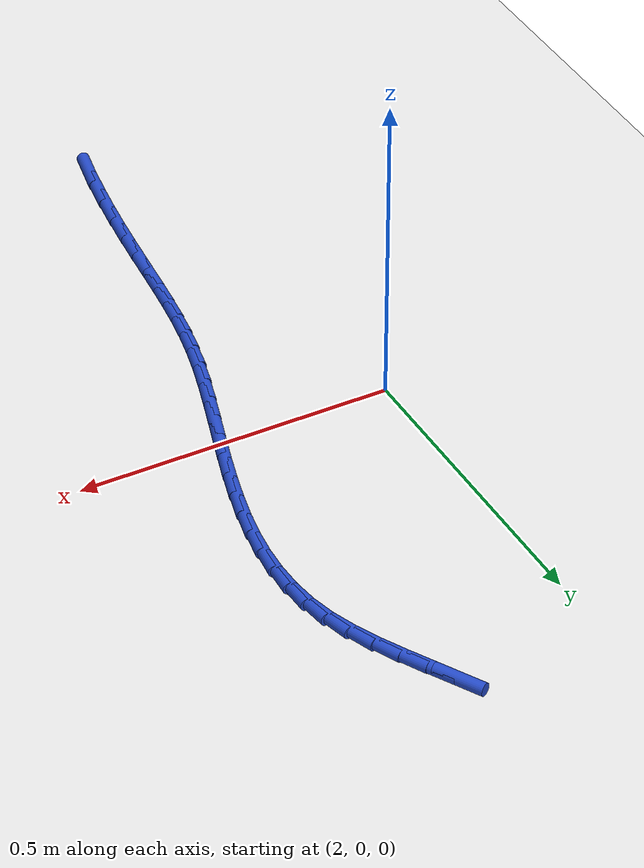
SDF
<sdf version="1.6">
 <world name="default">
  <model name="ground_plane">
   <static>1</static>
   <link name="link">
    <collision name="collision">
     <geometry><plane><normal>0 0 1</normal><size>100 100</size></plane></geometry>
     <surface><friction><ode><mu>100</mu><mu2>50</mu2></ode></friction></surface>
    </collision>
    <visual name="visual">
     <cast_shadows>0</cast_shadows>
     <geometry><plane><normal>0 0 1</normal><size>100 100</size></plane></geometry>
     <material>
      <script><uri>file://media/materials/scripts/gazebo.material</uri><name>Gazebo/WhiteGlow</name></script>
     </material>
    </visual>
   </link>
  </model>
  <model name="line">
   <link name="link_77">
    <pose>2.2261663400047205 0.6138834128634045 0.01 0 1.57 -1.057382048069833</pose>
    <collision name="collision">
     <geometry><cylinder><radius>0.01</radius><length>0.08</length></cylinder></geometry>
    </collision>
    <visual name="visual">
     <material>
      <script><name>Gazebo/Blue</name><uri>file://media/materials/scripts/gazebo.material</uri></script>
     </material>
     <geometry><cylinder><radius>0.01</radius><length>0.08</length></cylinder></geometry>
    </visual>
   </link>
   <link name="link_78">
    <pose>2.247596256149327 0.5758769898459094 0.01 0 1.57 -1.058031364144777</pose>
    <collision name="collision">
     <geometry><cylinder><radius>0.01</radius><length>0.08</length></cylinder></geometry>
    </collision>
    <visual name="visual">
     <material>
      <script><name>Gazebo/Blue</name><uri>file://media/materials/scripts/gazebo.material</uri></script>
     </material>
     <geometry><cylinder><radius>0.01</radius><length>0.08</length></cylinder></geometry>
    </visual>
   </link>
   <link name="link_79">
    <pose>2.268994310008976 0.5378694125548293 0.01 0 1.57 -1.0834048588103051</pose>
    <collision name="collision">
     <geometry><cylinder><radius>0.01</radius><length>0.08</length></cylinder></geometry>
    </collision>
    <visual name="visual">
     <material>
      <script><name>Gazebo/Blue</name><uri>file://media/materials/scripts/gazebo.material</uri></script>
     </material>
     <geometry><cylinder><radius>0.01</radius><length>0.08</length></cylinder></geometry>
    </visual>
   </link>
   <link name="link_80">
    <pose>2.2892413380935097 0.499670509051282 0.01 0 1.57 -1.1347647128070406</pose>
    <collision name="collision">
     <geometry><cylinder><radius>0.01</radius><length>0.08</length></cylinder></geometry>
    </collision>
    <visual name="visual">
     <material>
      <script><name>Gazebo/Blue</name><uri>file://media/materials/scripts/gazebo.material</uri></script>
     </material>
     <geometry><cylinder><radius>0.01</radius><length>0.08</length></cylinder></geometry>
    </visual>
   </link>
   <link name="link_81">
    <pose>2.307217606509439 0.4610899928926922 0.01 0 1.57 -1.2141855898034553</pose>
    <collision name="collision">
     <geometry><cylinder><radius>0.01</radius><length>0.08</length></cylinder></geometry>
    </collision>
    <visual name="visual">
     <material>
      <script><name>Gazebo/Blue</name><uri>file://media/materials/scripts/gazebo.material</uri></script>
     </material>
     <geometry><cylinder><radius>0.01</radius><length>0.08</length></cylinder></geometry>
    </visual>
   </link>
   <link name="link_82">
    <pose>2.3218033813632735 0.4219375776364853 0.01 0 1.57 -1.3214065197463125</pose>
    <collision name="collision">
     <geometry><cylinder><radius>0.01</radius><length>0.08</length></cylinder></geometry>
    </collision>
    <visual name="visual">
     <material>
      <script><name>Gazebo/Blue</name><uri>file://media/materials/scripts/gazebo.material</uri></script>
     </material>
     <geometry><cylinder><radius>0.01</radius><length>0.08</length></cylinder></geometry>
    </visual>
   </link>
   <link name="link_83">
    <pose>2.3319652568566966 0.38203890123069356 0.01 0 1.57 -1.4330289292118932</pose>
    <collision name="collision">
     <geometry><cylinder><radius>0.01</radius><length>0.08</length></cylinder></geometry>
    </collision>
    <visual name="visual">
     <material>
      <script><name>Gazebo/Blue</name><uri>file://media/materials/scripts/gazebo.material</uri></script>
     </material>
     <geometry><cylinder><radius>0.01</radius><length>0.08</length></cylinder></geometry>
    </visual>
   </link>
   <link name="link_84">
    <pose>2.3376008645544153 0.3413913441204843 0.01 0 1.57 -1.5326762523684545</pose>
    <collision name="collision">
     <geometry><cylinder><radius>0.01</radius><length>0.08</length></cylinder></geometry>
    </collision>
    <visual name="visual">
     <material>
      <script><name>Gazebo/Blue</name><uri>file://media/materials/scripts/gazebo.material</uri></script>
     </material>
     <geometry><cylinder><radius>0.01</radius><length>0.08</length></cylinder></geometry>
    </visual>
   </link>
   <link name="link_85">
    <pose>2.3391757690565704 0.30009704971928636 0.01 0 1.57 1.522739150454099</pose>
    <collision name="collision">
     <geometry><cylinder><radius>0.01</radius><length>0.08</length></cylinder></geometry>
    </collision>
    <visual name="visual">
     <material>
      <script><name>Gazebo/Blue</name><uri>file://media/materials/scripts/gazebo.material</uri></script>
     </material>
     <geometry><cylinder><radius>0.01</radius><length>0.08</length></cylinder></geometry>
    </visual>
   </link>
   <link name="link_86">
    <pose>2.3371636327671617 0.2582596551905236 0.01 0 1.57 1.4501482491781754</pose>
    <collision name="collision">
     <geometry><cylinder><radius>0.01</radius><length>0.08</length></cylinder></geometry>
    </collision>
    <visual name="visual">
     <material>
      <script><name>Gazebo/Blue</name><uri>file://media/materials/scripts/gazebo.material</uri></script>
     </material>
     <geometry><cylinder><radius>0.01</radius><length>0.08</length></cylinder></geometry>
    </visual>
   </link>
   <link name="link_87">
    <pose>2.332038118090189 0.21598279769761836 0.01 0 1.57 1.3905460015177409</pose>
    <collision name="collision">
     <geometry><cylinder><radius>0.01</radius><length>0.08</length></cylinder></geometry>
    </collision>
    <visual name="visual">
     <material>
      <script><name>Gazebo/Blue</name><uri>file://media/materials/scripts/gazebo.material</uri></script>
     </material>
     <geometry><cylinder><radius>0.01</radius><length>0.08</length></cylinder></geometry>
    </visual>
   </link>
   <link name="link_88">
    <pose>2.3242728874296534 0.17337011440399439 0.01 0 1.57 1.3430225275003047</pose>
    <collision name="collision">
     <geometry><cylinder><radius>0.01</radius><length>0.08</length></cylinder></geometry>
    </collision>
    <visual name="visual">
     <material>
      <script><name>Gazebo/Blue</name><uri>file://media/materials/scripts/gazebo.material</uri></script>
     </material>
     <geometry><cylinder><radius>0.01</radius><length>0.08</length></cylinder></geometry>
    </visual>
   </link>
   <link name="link_89">
    <pose>2.314341603189553 0.1305252424730749 0.01 0 1.57 1.3066323068221963</pose>
    <collision name="collision">
     <geometry><cylinder><radius>0.01</radius><length>0.08</length></cylinder></geometry>
    </collision>
    <visual name="visual">
     <material>
      <script><name>Gazebo/Blue</name><uri>file://media/materials/scripts/gazebo.material</uri></script>
     </material>
     <geometry><cylinder><radius>0.01</radius><length>0.08</length></cylinder></geometry>
    </visual>
   </link>
   <link name="link_90">
    <pose>2.3027179277738887 0.08755181906828365 0.01 0 1.57 1.2805582262021045</pose>
    <collision name="collision">
     <geometry><cylinder><radius>0.01</radius><length>0.08</length></cylinder></geometry>
    </collision>
    <visual name="visual">
     <material>
      <script><name>Gazebo/Blue</name><uri>file://media/materials/scripts/gazebo.material</uri></script>
     </material>
     <geometry><cylinder><radius>0.01</radius><length>0.08</length></cylinder></geometry>
    </visual>
   </link>
   <link name="link_91">
    <pose>2.2898755235866615 0.04455348135304308 0.01 0 1.57 1.2641992245671343</pose>
    <collision name="collision">
     <geometry><cylinder><radius>0.01</radius><length>0.08</length></cylinder></geometry>
    </collision>
    <visual name="visual">
     <material>
      <script><name>Gazebo/Blue</name><uri>file://media/materials/scripts/gazebo.material</uri></script>
     </material>
     <geometry><cylinder><radius>0.01</radius><length>0.08</length></cylinder></geometry>
    </visual>
   </link>
   <link name="link_92">
    <pose>2.276288053031869 0.0016338664907769238 0.01 0 1.57 1.257214986528263</pose>
    <collision name="collision">
     <geometry><cylinder><radius>0.01</radius><length>0.08</length></cylinder></geometry>
    </collision>
    <visual name="visual">
     <material>
      <script><name>Gazebo/Blue</name><uri>file://media/materials/scripts/gazebo.material</uri></script>
     </material>
     <geometry><cylinder><radius>0.01</radius><length>0.08</length></cylinder></geometry>
    </visual>
   </link>
   <link name="link_93">
    <pose>2.262429178513514 -0.04110338835509115 0.01 0 1.57 1.259551061724342</pose>
    <collision name="collision">
     <geometry><cylinder><radius>0.01</radius><length>0.08</length></cylinder></geometry>
    </collision>
    <visual name="visual">
     <material>
      <script><name>Gazebo/Blue</name><uri>file://media/materials/scripts/gazebo.material</uri></script>
     </material>
     <geometry><cylinder><radius>0.01</radius><length>0.08</length></cylinder></geometry>
    </visual>
   </link>
   <link name="link_94">
    <pose>2.2487725624355948 -0.08355464602113874 0.01 0 1.57 1.2714580356318352</pose>
    <collision name="collision">
     <geometry><cylinder><radius>0.01</radius><length>0.08</length></cylinder></geometry>
    </collision>
    <visual name="visual">
     <material>
      <script><name>Gazebo/Blue</name><uri>file://media/materials/scripts/gazebo.material</uri></script>
     </material>
     <geometry><cylinder><radius>0.01</radius><length>0.08</length></cylinder></geometry>
    </visual>
   </link>
   <link name="link_95">
    <pose>2.2357918672021113 -0.1256162693439421 0.01 0 1.57 1.2935102672421779</pose>
    <collision name="collision">
     <geometry><cylinder><radius>0.01</radius><length>0.08</length></cylinder></geometry>
    </collision>
    <visual name="visual">
     <material>
      <script><name>Gazebo/Blue</name><uri>file://media/materials/scripts/gazebo.material</uri></script>
     </material>
     <geometry><cylinder><radius>0.01</radius><length>0.08</length></cylinder></geometry>
    </visual>
   </link>
   <link name="link_96">
    <pose>2.223960755217064 -0.16718462116007796 0.01 0 1.57 1.326618970320532</pose>
    <collision name="collision">
     <geometry><cylinder><radius>0.01</radius><length>0.08</length></cylinder></geometry>
    </collision>
    <visual name="visual">
     <material>
      <script><name>Gazebo/Blue</name><uri>file://media/materials/scripts/gazebo.material</uri></script>
     </material>
     <geometry><cylinder><radius>0.01</radius><length>0.08</length></cylinder></geometry>
    </visual>
   </link>
   <link name="link_97">
    <pose>2.2137527484410637 -0.20815615107561264 0.01 0 1.57 1.368035296951213</pose>
    <collision name="collision">
     <geometry><cylinder><radius>0.01</radius><length>0.08</length></cylinder></geometry>
    </collision>
    <visual name="visual">
     <material>
      <script><name>Gazebo/Blue</name><uri>file://media/materials/scripts/gazebo.material</uri></script>
     </material>
     <geometry><cylinder><radius>0.01</radius><length>0.08</length></cylinder></geometry>
    </visual>
   </link>
   <link name="link_98">
    <pose>2.205449140593209 -0.24854607218185776 0.01 0 1.57 1.40577561578999</pose>
    <collision name="collision">
     <geometry><cylinder><radius>0.01</radius><length>0.08</length></cylinder></geometry>
    </collision>
    <visual name="visual">
     <material>
      <script><name>Gazebo/Blue</name><uri>file://media/materials/scripts/gazebo.material</uri></script>
     </material>
     <geometry><cylinder><radius>0.01</radius><length>0.08</length></cylinder></geometry>
    </visual>
   </link>
   <link name="link_99">
    <pose>2.1987581615484695 -0.28872365095407326 0.01 0 1.57 1.4360628654495673</pose>
    <collision name="collision">
     <geometry><cylinder><radius>0.01</radius><length>0.08</length></cylinder></geometry>
    </collision>
    <visual name="visual">
     <material>
      <script><name>Gazebo/Blue</name><uri>file://media/materials/scripts/gazebo.material</uri></script>
     </material>
     <geometry><cylinder><radius>0.01</radius><length>0.08</length></cylinder></geometry>
    </visual>
   </link>
   <link name="link_100">
    <pose>2.1932817262412145 -0.3291238379354784 0.01 0 1.57 1.4577818361625663</pose>
    <collision name="collision">
     <geometry><cylinder><radius>0.01</radius><length>0.08</length></cylinder></geometry>
    </collision>
    <visual name="visual">
     <material>
      <script><name>Gazebo/Blue</name><uri>file://media/materials/scripts/gazebo.material</uri></script>
     </material>
     <geometry><cylinder><radius>0.01</radius><length>0.08</length></cylinder></geometry>
    </visual>
   </link>
   <link name="link_101">
    <pose>2.1886217496058116 -0.3701815836692933 0.01 0 1.57 1.4705034138745874</pose>
    <collision name="collision">
     <geometry><cylinder><radius>0.01</radius><length>0.08</length></cylinder></geometry>
    </collision>
    <visual name="visual">
     <material>
      <script><name>Gazebo/Blue</name><uri>file://media/materials/scripts/gazebo.material</uri></script>
     </material>
     <geometry><cylinder><radius>0.01</radius><length>0.08</length></cylinder></geometry>
    </visual>
   </link>
   <link name="link_102">
    <pose>2.1843801465766286 -0.412331838698738 0.01 0 1.57 1.4744486940358144</pose>
    <collision name="collision">
     <geometry><cylinder><radius>0.01</radius><length>0.08</length></cylinder></geometry>
    </collision>
    <visual name="visual">
     <material>
      <script><name>Gazebo/Blue</name><uri>file://media/materials/scripts/gazebo.material</uri></script>
     </material>
     <geometry><cylinder><radius>0.01</radius><length>0.08</length></cylinder></geometry>
    </visual>
   </link>
   <link name="link_103">
    <pose>2.1801588320880336 -0.45600955356703265 0.01 0 1.57 1.4703663195500936</pose>
    <collision name="collision">
     <geometry><cylinder><radius>0.01</radius><length>0.08</length></cylinder></geometry>
    </collision>
    <visual name="visual">
     <material>
      <script><name>Gazebo/Blue</name><uri>file://media/materials/scripts/gazebo.material</uri></script>
     </material>
     <geometry><cylinder><radius>0.01</radius><length>0.08</length></cylinder></geometry>
    </visual>
   </link>
   <link name="link_104">
    <pose>2.175559721074396 -0.5016496788173974 0.01 0 1.57 1.4593801011855971</pose>
    <collision name="collision">
     <geometry><cylinder><radius>0.01</radius><length>0.08</length></cylinder></geometry>
    </collision>
    <visual name="visual">
     <material>
      <script><name>Gazebo/Blue</name><uri>file://media/materials/scripts/gazebo.material</uri></script>
     </material>
     <geometry><cylinder><radius>0.01</radius><length>0.08</length></cylinder></geometry>
    </visual>
   </link>
   <link name="link_105">
    <pose>2.170186310061598 -0.5496782145809687 0.01 0 1.57 1.4432663799408116</pose>
    <collision name="collision">
     <geometry><cylinder><radius>0.01</radius><length>0.08</length></cylinder></geometry>
    </collision>
    <visual name="visual">
     <material>
      <script><name>Gazebo/Blue</name><uri>file://media/materials/scripts/gazebo.material</uri></script>
     </material>
     <geometry><cylinder><radius>0.01</radius><length>0.08</length></cylinder></geometry>
    </visual>
   </link>
   <link name="link_106">
    <pose>2.1637326147115408 -0.6000089025704309 0.01 0 1.57 1.423094093432509</pose>
    <collision name="collision">
     <geometry><cylinder><radius>0.01</radius><length>0.08</length></cylinder></geometry>
    </collision>
    <visual name="visual">
     <material>
      <script><name>Gazebo/Blue</name><uri>file://media/materials/scripts/gazebo.material</uri></script>
     </material>
     <geometry><cylinder><radius>0.01</radius><length>0.08</length></cylinder></geometry>
    </visual>
   </link>
   <link name="link_107">
    <pose>2.156030495178369 -0.6517754063326643 0.01 0 1.57 1.3982974494526113</pose>
    <collision name="collision">
     <geometry><cylinder><radius>0.01</radius><length>0.08</length></cylinder></geometry>
    </collision>
    <visual name="visual">
     <material>
      <script><name>Gazebo/Blue</name><uri>file://media/materials/scripts/gazebo.material</uri></script>
     </material>
     <geometry><cylinder><radius>0.01</radius><length>0.08</length></cylinder></geometry>
    </visual>
   </link>
   <link name="link_108">
    <pose>2.1469233862590675 -0.7040458871517635 0.01 0 1.57 1.3678402469636062</pose>
    <collision name="collision">
     <geometry><cylinder><radius>0.01</radius><length>0.08</length></cylinder></geometry>
    </collision>
    <visual name="visual">
     <material>
      <script><name>Gazebo/Blue</name><uri>file://media/materials/scripts/gazebo.material</uri></script>
     </material>
     <geometry><cylinder><radius>0.01</radius><length>0.08</length></cylinder></geometry>
    </visual>
   </link>
  </model>
 </world>
</sdf>
